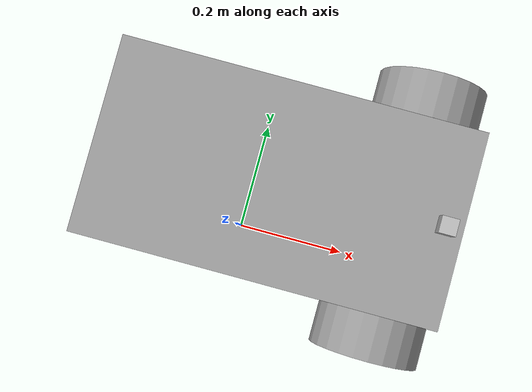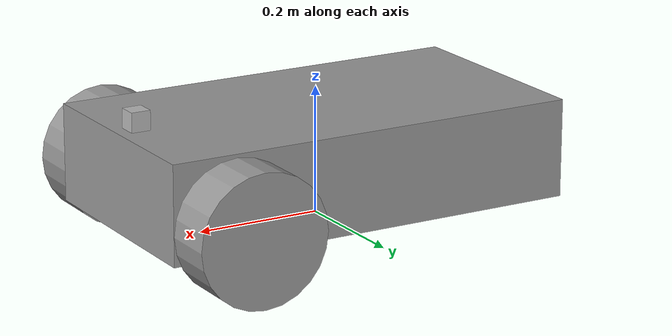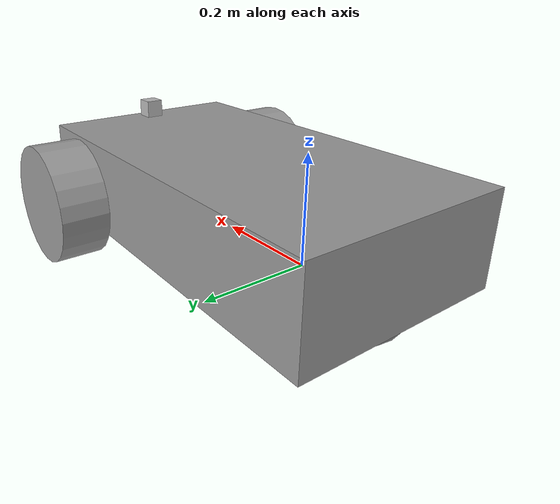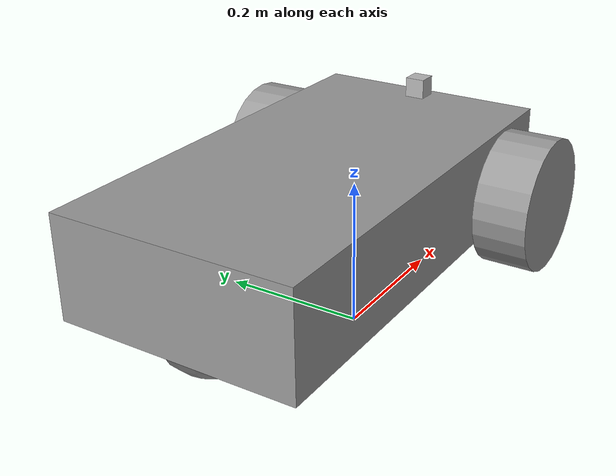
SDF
<?xml version='1.0'?>
<sdf version='1.6'>
  <model name='VehicleRobot'>
    <link name='link_10_clone'>
      <pose frame=''>0.278989 0.302807 0.099972 1.5707 -0 0</pose>
      <inertial>
        <mass>0.5</mass>
        <inertia>
          <ixx>0.145833</ixx>
          <ixy>0</ixy>
          <ixz>0</ixz>
          <iyy>0.145833</iyy>
          <iyz>0</iyz>
          <izz>0.125</izz>
        </inertia>
        <pose frame=''>0 0 0 0 -0 0</pose>
      </inertial>
      <self_collide>0</self_collide>
      <kinematic>0</kinematic>
      <visual name='visual'>
        <pose frame=''>0 0 0 0 -0 0</pose>
        <geometry>
          <cylinder>
            <radius>0.1</radius>
            <length>0.08</length>
          </cylinder>
        </geometry>
        <material>
          <lighting>1</lighting>
          <script>
            <uri>file://media/materials/scripts/gazebo.material</uri>
            <name>Gazebo/Grey</name>
          </script>
          <shader type='pixel'>
            <normal_map>__default__</normal_map>
          </shader>
          <ambient>0.3 0.3 0.3 1</ambient>
          <diffuse>0.7 0.7 0.7 1</diffuse>
          <specular>0.01 0.01 0.01 1</specular>
          <emissive>0 0 0 1</emissive>
        </material>
        <transparency>0</transparency>
        <cast_shadows>1</cast_shadows>
      </visual>
      <collision name='collision'>
        <laser_retro>0</laser_retro>
        <max_contacts>10</max_contacts>
        <pose frame=''>0 0 0 0 -0 0</pose>
        <geometry>
          <cylinder>
            <radius>0.1</radius>
            <length>0.08</length>
          </cylinder>
        </geometry>
        <surface>
          <friction>
            <ode>
              <mu>1</mu>
              <mu2>1</mu2>
              <fdir1>0 0 0</fdir1>
              <slip1>0</slip1>
              <slip2>0</slip2>
            </ode>
            <torsional>
              <coefficient>1</coefficient>
              <patch_radius>0</patch_radius>
              <surface_radius>0</surface_radius>
              <use_patch_radius>1</use_patch_radius>
              <ode>
                <slip>0</slip>
              </ode>
            </torsional>
          </friction>
          <bounce>
            <restitution_coefficient>0</restitution_coefficient>
            <threshold>1e+06</threshold>
          </bounce>
          <contact>
            <collide_without_contact>0</collide_without_contact>
            <collide_without_contact_bitmask>1</collide_without_contact_bitmask>
            <collide_bitmask>1</collide_bitmask>
            <ode>
              <soft_cfm>0</soft_cfm>
              <soft_erp>0.2</soft_erp>
              <kp>1e+13</kp>
              <kd>1</kd>
              <max_vel>0.01</max_vel>
              <min_depth>0</min_depth>
            </ode>
            <bullet>
              <split_impulse>1</split_impulse>
              <split_impulse_penetration_threshold>-0.01</split_impulse_penetration_threshold>
              <soft_cfm>0</soft_cfm>
              <soft_erp>0.2</soft_erp>
              <kp>1e+13</kp>
              <kd>1</kd>
            </bullet>
          </contact>
        </surface>
      </collision>
    </link>
    <link name='link_10_clone_clone'>
      <pose frame=''>0.278989 -0.128364 0.100018 1.5707 -0 0</pose>
      <inertial>
        <mass>0.5</mass>
        <inertia>
          <ixx>0.145833</ixx>
          <ixy>0</ixy>
          <ixz>0</ixz>
          <iyy>0.145833</iyy>
          <iyz>0</iyz>
          <izz>0.125</izz>
        </inertia>
        <pose frame=''>0 0 0 0 -0 0</pose>
      </inertial>
      <self_collide>0</self_collide>
      <kinematic>0</kinematic>
      <visual name='visual'>
        <pose frame=''>0 0 0 0 -0 0</pose>
        <geometry>
          <cylinder>
            <radius>0.1</radius>
            <length>0.08</length>
          </cylinder>
        </geometry>
        <material>
          <lighting>1</lighting>
          <script>
            <uri>file://media/materials/scripts/gazebo.material</uri>
            <name>Gazebo/Grey</name>
          </script>
          <shader type='pixel'>
            <normal_map>__default__</normal_map>
          </shader>
          <ambient>0.3 0.3 0.3 1</ambient>
          <diffuse>0.7 0.7 0.7 1</diffuse>
          <specular>0.01 0.01 0.01 1</specular>
          <emissive>0 0 0 1</emissive>
        </material>
        <transparency>0</transparency>
        <cast_shadows>1</cast_shadows>
      </visual>
      <collision name='collision'>
        <laser_retro>0</laser_retro>
        <max_contacts>10</max_contacts>
        <pose frame=''>0 0 0 0 -0 0</pose>
        <geometry>
          <cylinder>
            <radius>0.1</radius>
            <length>0.08</length>
          </cylinder>
        </geometry>
        <surface>
          <friction>
            <ode>
              <mu>1</mu>
              <mu2>1</mu2>
              <fdir1>0 0 0</fdir1>
              <slip1>0</slip1>
              <slip2>0</slip2>
            </ode>
            <torsional>
              <coefficient>1</coefficient>
              <patch_radius>0</patch_radius>
              <surface_radius>0</surface_radius>
              <use_patch_radius>1</use_patch_radius>
              <ode>
                <slip>0</slip>
              </ode>
            </torsional>
          </friction>
          <bounce>
            <restitution_coefficient>0</restitution_coefficient>
            <threshold>1e+06</threshold>
          </bounce>
          <contact>
            <collide_without_contact>0</collide_without_contact>
            <collide_without_contact_bitmask>1</collide_without_contact_bitmask>
            <collide_bitmask>1</collide_bitmask>
            <ode>
              <soft_cfm>0</soft_cfm>
              <soft_erp>0.2</soft_erp>
              <kp>1e+13</kp>
              <kd>1</kd>
              <max_vel>0.01</max_vel>
              <min_depth>0</min_depth>
            </ode>
            <bullet>
              <split_impulse>1</split_impulse>
              <split_impulse_penetration_threshold>-0.01</split_impulse_penetration_threshold>
              <soft_cfm>0</soft_cfm>
              <soft_erp>0.2</soft_erp>
              <kp>1e+13</kp>
              <kd>1</kd>
            </bullet>
          </contact>
        </surface>
      </collision>
    </link>
    <link name='link_11'>
      <pose frame=''>-0.191011 0.086646 0.08 0 -0 0</pose>
      <inertial>
        <mass>0.5</mass>
        <inertia>
          <ixx>0.1</ixx>
          <ixy>0</ixy>
          <ixz>0</ixz>
          <iyy>0.1</iyy>
          <iyz>0</iyz>
          <izz>0.1</izz>
        </inertia>
        <pose frame=''>0 0 0 0 -0 0</pose>
      </inertial>
      <self_collide>0</self_collide>
      <kinematic>0</kinematic>
      <visual name='visual'>
        <pose frame=''>0 0 0 0 -0 0</pose>
        <geometry>
          <sphere>
            <radius>0.08</radius>
          </sphere>
        </geometry>
        <material>
          <lighting>1</lighting>
          <script>
            <uri>file://media/materials/scripts/gazebo.material</uri>
            <name>Gazebo/Grey</name>
          </script>
          <shader type='pixel'>
            <normal_map>__default__</normal_map>
          </shader>
          <ambient>0.3 0.3 0.3 1</ambient>
          <diffuse>0.7 0.7 0.7 1</diffuse>
          <specular>0.01 0.01 0.01 1</specular>
          <emissive>0 0 0 1</emissive>
        </material>
        <transparency>0</transparency>
        <cast_shadows>1</cast_shadows>
      </visual>
      <collision name='collision'>
        <laser_retro>0</laser_retro>
        <max_contacts>10</max_contacts>
        <pose frame=''>0 0 0 0 -0 0</pose>
        <geometry>
          <sphere>
            <radius>0.08</radius>
          </sphere>
        </geometry>
        <surface>
          <friction>
            <ode>
              <mu>1</mu>
              <mu2>1</mu2>
              <fdir1>0 0 0</fdir1>
              <slip1>0</slip1>
              <slip2>0</slip2>
            </ode>
            <torsional>
              <coefficient>1</coefficient>
              <patch_radius>0</patch_radius>
              <surface_radius>0</surface_radius>
              <use_patch_radius>1</use_patch_radius>
              <ode>
                <slip>0</slip>
              </ode>
            </torsional>
          </friction>
          <bounce>
            <restitution_coefficient>0</restitution_coefficient>
            <threshold>1e+06</threshold>
          </bounce>
          <contact>
            <collide_without_contact>0</collide_without_contact>
            <collide_without_contact_bitmask>1</collide_without_contact_bitmask>
            <collide_bitmask>1</collide_bitmask>
            <ode>
              <soft_cfm>0</soft_cfm>
              <soft_erp>0.2</soft_erp>
              <kp>1e+13</kp>
              <kd>1</kd>
              <max_vel>0.01</max_vel>
              <min_depth>0</min_depth>
            </ode>
            <bullet>
              <split_impulse>1</split_impulse>
              <split_impulse_penetration_threshold>-0.01</split_impulse_penetration_threshold>
              <soft_cfm>0</soft_cfm>
              <soft_erp>0.2</soft_erp>
              <kp>1e+13</kp>
              <kd>1</kd>
            </bullet>
          </contact>
        </surface>
      </collision>
    </link>
    <link name='link_9'>
      <pose frame=''>0.053989 0.086646 0.13 0 -0 0</pose>
      <inertial>
        <mass>0.5</mass>
        <inertia>
          <ixx>0.166667</ixx>
          <ixy>0</ixy>
          <ixz>0</ixz>
          <iyy>0.166667</iyy>
          <iyz>0</iyz>
          <izz>0.166667</izz>
        </inertia>
        <pose frame=''>0 0 0 0 -0 0</pose>
      </inertial>
      <self_collide>0</self_collide>
      <kinematic>0</kinematic>
      <visual name='visual'>
        <pose frame=''>0 0 0 0 -0 0</pose>
        <geometry>
          <box>
            <size>0.65 0.35 0.15</size>
          </box>
        </geometry>
        <material>
          <lighting>1</lighting>
          <script>
            <uri>file://media/materials/scripts/gazebo.material</uri>
            <name>Gazebo/Grey</name>
          </script>
          <shader type='pixel'>
            <normal_map>__default__</normal_map>
          </shader>
          <ambient>0.3 0.3 0.3 1</ambient>
          <diffuse>0.7 0.7 0.7 1</diffuse>
          <specular>0.01 0.01 0.01 1</specular>
          <emissive>0 0 0 1</emissive>
        </material>
        <transparency>0</transparency>
        <cast_shadows>1</cast_shadows>
      </visual>
      <collision name='collision'>
        <laser_retro>0</laser_retro>
        <max_contacts>10</max_contacts>
        <pose frame=''>0 0 0 0 -0 0</pose>
        <geometry>
          <box>
            <size>0.65 0.35 0.15</size>
          </box>
        </geometry>
        <surface>
          <friction>
            <ode>
              <mu>1</mu>
              <mu2>1</mu2>
              <fdir1>0 0 0</fdir1>
              <slip1>0</slip1>
              <slip2>0</slip2>
            </ode>
            <torsional>
              <coefficient>1</coefficient>
              <patch_radius>0</patch_radius>
              <surface_radius>0</surface_radius>
              <use_patch_radius>1</use_patch_radius>
              <ode>
                <slip>0</slip>
              </ode>
            </torsional>
          </friction>
          <bounce>
            <restitution_coefficient>0</restitution_coefficient>
            <threshold>1e+06</threshold>
          </bounce>
          <contact>
            <collide_without_contact>0</collide_without_contact>
            <collide_without_contact_bitmask>1</collide_without_contact_bitmask>
            <collide_bitmask>1</collide_bitmask>
            <ode>
              <soft_cfm>0</soft_cfm>
              <soft_erp>0.2</soft_erp>
              <kp>1e+13</kp>
              <kd>1</kd>
              <max_vel>0.01</max_vel>
              <min_depth>0</min_depth>
            </ode>
            <bullet>
              <split_impulse>1</split_impulse>
              <split_impulse_penetration_threshold>-0.01</split_impulse_penetration_threshold>
              <soft_cfm>0</soft_cfm>
              <soft_erp>0.2</soft_erp>
              <kp>1e+13</kp>
              <kd>1</kd>
            </bullet>
          </contact>
        </surface>
      </collision>
    </link>
    <model name='camera'>
      <link name='link'>
        <pose frame=''>0 0 0 0 -0 0</pose>
        <inertial>
          <mass>0.04</mass>
          <inertia>
            <ixx>0.00016667</ixx>
            <iyy>0.00016667</iyy>
            <izz>0.00016667</izz>
            <ixy>0</ixy>
            <ixz>0</ixz>
            <iyz>0</iyz>
          </inertia>
          <pose frame=''>0 0 0 0 -0 0</pose>
        </inertial>
        <self_collide>0</self_collide>
        <kinematic>0</kinematic>
        <sensor name='camera' type='camera'>
          <camera name='__default__'>
            <horizontal_fov>1.047</horizontal_fov>
            <image>
              <width>320</width>
              <height>240</height>
            </image>
            <clip>
              <near>0.1</near>
              <far>100</far>
            </clip>
          </camera>
          <always_on>1</always_on>
          <update_rate>30</update_rate>
          <visualize>1</visualize>
        </sensor>
        <gravity>1</gravity>
        <visual name='visual'>
          <geometry>
            <box>
              <size>0.03 0.03 0.03</size>
            </box>
          </geometry>
          <material>
            <shader type='pixel'>
              <normal_map>__default__</normal_map>
            </shader>
          </material>
          <pose frame=''>0 0 0 0 -0 0</pose>
          <cast_shadows>1</cast_shadows>
          <transparency>0</transparency>
        </visual>
        <collision name='collision'>
          <laser_retro>0</laser_retro>
          <max_contacts>10</max_contacts>
          <pose frame=''>0 0 0 0 -0 0</pose>
          <geometry>
            <box>
              <size>0.03 0.03 0.03</size>
            </box>
          </geometry>
          <surface>
            <friction>
              <ode>
                <mu>1</mu>
                <mu2>1</mu2>
                <fdir1>0 0 0</fdir1>
                <slip1>0</slip1>
                <slip2>0</slip2>
              </ode>
              <torsional>
                <coefficient>1</coefficient>
                <patch_radius>0</patch_radius>
                <surface_radius>0</surface_radius>
                <use_patch_radius>1</use_patch_radius>
                <ode>
                  <slip>0</slip>
                </ode>
              </torsional>
            </friction>
            <bounce>
              <restitution_coefficient>0</restitution_coefficient>
              <threshold>1e+06</threshold>
            </bounce>
            <contact>
              <collide_without_contact>0</collide_without_contact>
              <collide_without_contact_bitmask>1</collide_without_contact_bitmask>
              <collide_bitmask>1</collide_bitmask>
              <ode>
                <soft_cfm>0</soft_cfm>
                <soft_erp>0.2</soft_erp>
                <kp>1e+13</kp>
                <kd>1</kd>
                <max_vel>0.01</max_vel>
                <min_depth>0</min_depth>
              </ode>
              <bullet>
                <split_impulse>1</split_impulse>
                <split_impulse_penetration_threshold>-0.01</split_impulse_penetration_threshold>
                <soft_cfm>0</soft_cfm>
                <soft_erp>0.2</soft_erp>
                <kp>1e+13</kp>
                <kd>1</kd>
              </bullet>
            </contact>
          </surface>
        </collision>
      </link>
      <static>0</static>
      <allow_auto_disable>1</allow_auto_disable>
      <pose frame=''>0.346819 0.087578 0.221125 0 -0 0</pose>
    </model>
    <joint name='link_9_JOINT_1' type='revolute'>
      <parent>link_9</parent>
      <child>link_10_clone_clone</child>
      <pose frame=''>0 0 0 0 -0 0</pose>
      <axis>
        <xyz>0 0 1</xyz>
        <use_parent_model_frame>0</use_parent_model_frame>
        <limit>
          <lower>-1.79769e+308</lower>
          <upper>1.79769e+308</upper>
          <effort>-1</effort>
          <velocity>-1</velocity>
        </limit>
        <dynamics>
          <spring_reference>0</spring_reference>
          <spring_stiffness>0</spring_stiffness>
          <damping>0</damping>
          <friction>0</friction>
        </dynamics>
      </axis>
      <physics>
        <ode>
          <limit>
            <cfm>0</cfm>
            <erp>0.2</erp>
          </limit>
          <suspension>
            <cfm>0</cfm>
            <erp>0.2</erp>
          </suspension>
        </ode>
      </physics>
    </joint>
    <joint name='link_9_JOINT_2' type='revolute'>
      <parent>link_9</parent>
      <child>link_10_clone</child>
      <pose frame=''>0 0 0 0 -0 0</pose>
      <axis>
        <xyz>0 0 1</xyz>
        <use_parent_model_frame>0</use_parent_model_frame>
        <limit>
          <lower>-1.79769e+308</lower>
          <upper>1.79769e+308</upper>
          <effort>-1</effort>
          <velocity>-1</velocity>
        </limit>
        <dynamics>
          <spring_reference>0</spring_reference>
          <spring_stiffness>0</spring_stiffness>
          <damping>0</damping>
          <friction>0</friction>
        </dynamics>
      </axis>
      <physics>
        <ode>
          <limit>
            <cfm>0</cfm>
            <erp>0.2</erp>
          </limit>
          <suspension>
            <cfm>0</cfm>
            <erp>0.2</erp>
          </suspension>
        </ode>
      </physics>
    </joint>
    <joint name='link_9_JOINT_3' type='ball'>
      <parent>link_9</parent>
      <child>link_11</child>
      <pose frame=''>0 0 0 0 -0 0</pose>
      <physics>
        <ode>
          <limit>
            <cfm>0</cfm>
            <erp>0.2</erp>
          </limit>
          <suspension>
            <cfm>0</cfm>
            <erp>0.2</erp>
          </suspension>
        </ode>
      </physics>
    </joint>
    <joint name='link_9_JOINT_5' type='fixed'>
      <parent>link_9</parent>
      <child>camera::link</child>
      <pose frame=''>0 0 0 0 -0 0</pose>
      <physics>
        <ode>
          <limit>
            <cfm>0</cfm>
            <erp>0.2</erp>
          </limit>
          <suspension>
            <cfm>0</cfm>
            <erp>0.2</erp>
          </suspension>
        </ode>
      </physics>
    </joint>
    <static>0</static>
    <allow_auto_disable>1</allow_auto_disable>
  </model>
</sdf>
